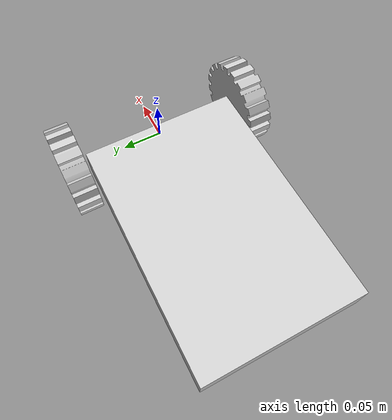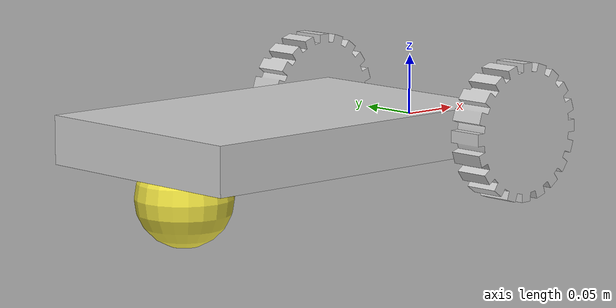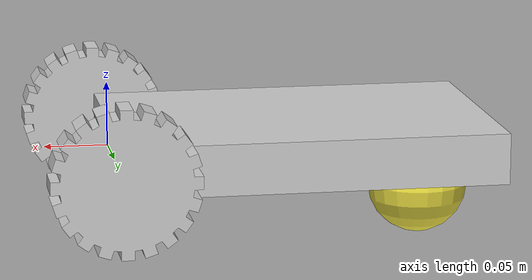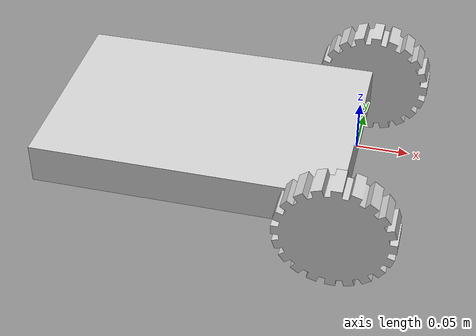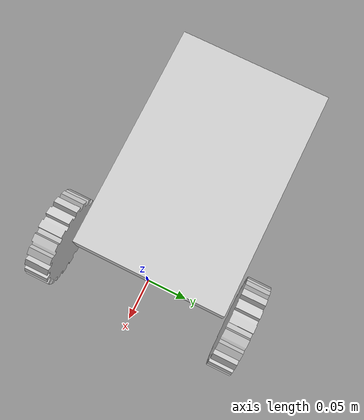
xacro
<?xml version='1.0' encoding='utf-8'?>
<robot xmlns:xacro="http://www.ros.org/wiki/xacro" name="first_robot">

    <!-- Include the file from first_robo_freecad package -->
    <xacro:include filename="$(find first_robot_freecad)/urdf/FirstRobot.urdf" />

    <!-- Add ROS2 Control to the wheel joints -->
    <ros2_control name="first_robot" type="system">
        <hardware>
            <plugin>ign_ros2_control/IgnitionSystem</plugin>
        </hardware>
        <joint name="left_wheel_joint">
            <command_interface name="velocity">
                <param name="min">-10</param>
                <param name="max">10</param>
            </command_interface>
            <state_interface name="position"/>
            <state_interface name="velocity"/>
            <state_interface name="effort" />
        </joint>

        <joint name="right_wheel_joint">
            <command_interface name="velocity">
                <param name="min">-10</param>
                <param name="max">10</param>
            </command_interface>

            <state_interface name="position"/>
            <state_interface name="velocity"/>
            <state_interface name="effort" />
        </joint>
    </ros2_control>

    <!-- Adding a lidar sensor to the base link, feel free to change the reference to the name of a link that you want the lidar to be in -->

    <gazebo reference="base_link">
        <sensor name="lidar_2d_v1" type="gpu_ray">
            <topic>lidar</topic>
            <ignition_frame_id>rplidar</ignition_frame_id>
            <pose>0 0 0.0525045525 0 0 0</pose>
            <ray>
                <scan>
                    <horizontal>
                        <samples>180</samples>
                        <resolution>1</resolution>
                        <min_angle>${-pi}</min_angle>
                        <max_angle>${pi}</max_angle>
                    </horizontal>
                </scan>
                <range>
                    <min>0.06</min>
                    <max>5</max>
                    <resolution>0.01</resolution>
                </range>
                <noise>
                    <type>gaussian</type>
                    <mean>0.0</mean>
                    <stddev>0.001</stddev>
                </noise>
            </ray>
            <always_on>0</always_on>
            <update_rate>20</update_rate>
            <visualize>false</visualize>
        </sensor>
    </gazebo>

    <!-- Add a dummy base_footprint link to remove error messages about it. -->
    <link name="base_footprint"/>
    <joint name="base_fp_link" type="fixed">
        <parent link="base_footprint" />
        <child link="base_link" />
    </joint>

    <!-- Setup plugins for control and sensors -->
    <gazebo>
        <plugin filename="ign_ros2_control-system" name="ign_ros2_control::IgnitionROS2ControlPlugin">
            <ros>
                <remapping>diff_drive_base_controller/odometry:=odom</remapping>
                <remapping>diff_drive_base_controller/tf_odometry:=tf</remapping>
                <remapping>diff_drive_base_controller/cmd_vel_unstamped:=cmd_vel</remapping>
            </ros>
            <parameters>$(find first_robot)/config/diffdrive_control.yaml</parameters>
        </plugin>

        <plugin filename="ignition-gazebo-sensors-system" name="ignition::gazebo::systems::Sensors">
            <render_engine>ogre2</render_engine>
        </plugin>

    </gazebo>

    <!-- Increase friction of wheels so they don't slip as much -->

    <gazebo reference="left_wheel">
        <collision>
            <surface>
                <friction>
                    <ode>
                        <mu>1.0</mu>
                        <mu2>1.0</mu2>
                        <fdir1>0 0 1</fdir1>
                        <slip1>0.0</slip1>
                        <slip2>0.0</slip2>
                        <min_depth>0.001</min_depth>
                        <kp>1e8</kp>
                    </ode>
                </friction>
            </surface>
        </collision>
    </gazebo>

    <gazebo reference="right_wheel">
        <collision>
            <surface>
                <friction>
                    <ode>
                        <mu>10000</mu>
                        <mu2>10000</mu2>
                        <fdir1>0 0 1</fdir1>
                        <slip1>0.001</slip1>
                        <slip2>0.001</slip2>
                        <min_depth>0.001</min_depth>
                        <kp>1e8</kp>
                    </ode>
                    <bullet>
                        <friction>1</friction>
                        <friction2>1</friction2>
                        <rolling_friction>0.1</rolling_friction>
                    </bullet>
                </friction>
            </surface>
        </collision>
    </gazebo>

    <!-- Reduce friction of base link so it will slide -->
    <gazebo reference="base_link">
        <collision>
            <surface>
                <contact>
                    <min_depth>0.0001</min_depth>
                </contact>
                <friction>
                    <ode>
                        <mu>0.01</mu>
                        <mu1>0.01</mu1>
                        <mu2>0.01</mu2>
                        <slip1>0.01</slip1>
                        <slip2>0.01</slip2>
                        <kp>1e-1</kp>
                        <kd>1e-1</kd>
                    </ode>
                    <bullet>
                        <friction>1</friction>
                        <friction2>1</friction2>
                        <rolling_friction>0.1</rolling_friction>
                    </bullet>
                </friction>
            </surface>
        </collision>
    </gazebo>

    <!-- Reduce friction of base link so it will slide -->
    <gazebo reference="caster_wheel">
        <collision>
            <surface>
                <contact>
                    <min_depth>0.0001</min_depth>
                </contact>
                <friction>
                    <ode>
                        <mu>0.01</mu>
                        <mu1>0.01</mu1>
                        <mu2>0.01</mu2>
                        <slip1>0.01</slip1>
                        <slip2>0.01</slip2>
                        <kp>1e-1</kp>
                        <kd>1e-1</kd>
                    </ode>
                    <bullet>
                        <friction>1</friction>
                        <friction2>1</friction2>
                        <rolling_friction>0.1</rolling_friction>
                    </bullet>
                </friction>

            </surface>
        </collision>
    </gazebo>

</robot>

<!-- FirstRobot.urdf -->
<robot name="Robot">
  <!--Generated by CROSS, a ROS Workbench for FreeCAD (https://github.com/galou/freecad.cross)-->
  <link name="base_link">
    <visual>
      <!--Box_Chassis/Body001.-->
      <origin rpy="0.0 -0.0 0.0" xyz="0.0 0.0 0.0"/>
      <geometry>
        <mesh filename="package://first_robot_freecad/meshes/first_robot_Body001.dae"/>
      </geometry>
    </visual>
    <collision>
      <!--Box_Chassis/Body001.-->
      <origin rpy="0.0 -0.0 0.0" xyz="0.0 0.0 0.0"/>
      <geometry>
        <mesh filename="package://first_robot_freecad/meshes/first_robot_Body001.dae"/>
      </geometry>
    </collision>
    <inertial>
      <mass value="6.4799999999999995"/>
      <origin rpy="0.0 -0.0 0.0" xyz="-0.15 -8.7e-18 4e-19"/>
      <inertia ixx="0.022464" ixy="0.0" ixz="-0.0" iyy="0.049464" iyz="0.0" izz="0.0702"/>
    </inertial>
  </link>
  <link name="left_wheel">
    <visual>
      <!--Adjustable Wheel/Body.-->
      <origin rpy="0.0 -0.0 0.0" xyz="0.0 0.0 0.0"/>
      <geometry>
        <mesh filename="package://first_robot_freecad/meshes/first_robot_Body.dae"/>
      </geometry>
    </visual>
    <collision>
      <!--Adjustable Wheel.Body_bbox-->
      <origin rpy="0.0 -0.0 0.0" xyz="0.0 0.0 0.015"/>
      <geometry>
        <cylinder length="0.03000000000000005" radius="0.06"/>
      </geometry>
    </collision>
    <inertial>
      <mass value="0.7509245446194294"/>
      <origin rpy="0.0 -0.0 0.0" xyz="-1.38e-17 -2.1e-18 -1e-19"/>
      <inertia ixx="0.0006186158699452" ixy="-0.0" ixz="-0.0" iyy="0.0011245930581975" iyz="-0.0" izz="0.0006186158699452"/>
    </inertial>
  </link>
  <link name="right_wheel">
    <visual>
      <!--Adjustable Wheel/Body.-->
      <origin rpy="0.0 -0.0 0.0" xyz="0.0 0.0 0.0"/>
      <geometry>
        <mesh filename="package://first_robot_freecad/meshes/first_robot_Body.dae"/>
      </geometry>
    </visual>
    <collision>
      <!--Adjustable Wheel.Body_bbox-->
      <origin rpy="0.0 -0.0 0.0" xyz="0.0 0.0 0.015"/>
      <geometry>
        <cylinder length="0.03000000000000005" radius="0.06"/>
      </geometry>
    </collision>
    <inertial>
      <mass value="0.7509245446194294"/>
      <origin rpy="0.0 -0.0 0.0" xyz="-1.38e-17 -2.1e-18 -1e-19"/>
      <inertia ixx="0.0006186158699452" ixy="-0.0" ixz="-0.0" iyy="0.0011245930581975" iyz="-0.0" izz="0.0006186158699452"/>
    </inertial>
  </link>
  <link name="caster_wheel">
    <visual>
      <!--Sphere001-->
      <geometry>
        <sphere radius="0.04"/>
      </geometry>
    </visual>
    <collision>
      <!--Sphere001-->
      <geometry>
        <sphere radius="0.04"/>
      </geometry>
    </collision>
    <inertial>
      <mass value="0.0"/>
      <origin rpy="0.0 -0.0 0.0" xyz="0.0 0.0 0.0"/>
      <inertia ixx="0.0" ixy="0.0" ixz="0.0" iyy="0.0" iyz="0.0" izz="0.0"/>
    </inertial>
  </link>
  <joint name="left_wheel_joint" type="continuous">
    <parent link="base_link"/>
    <child link="left_wheel"/>
    <origin rpy="-1.5707963267948966 0.0 0.0" xyz="0.0 0.12 0.0"/>
    <axis xyz="0 0 1"/>
  </joint>
  <joint name="right_wheel_joint" type="continuous">
    <parent link="base_link"/>
    <child link="right_wheel"/>
    <origin rpy="-1.5707963267948966 0.0 0.0" xyz="0.0 -0.12 0.0"/>
    <axis xyz="0 0 1"/>
  </joint>
  <joint name="caster_wheel_joint" type="fixed">
    <parent link="base_link"/>
    <child link="caster_wheel"/>
    <origin rpy="0.0 -0.0 0.0" xyz="-0.25 0.0 -0.04"/>
  </joint>
</robot>
